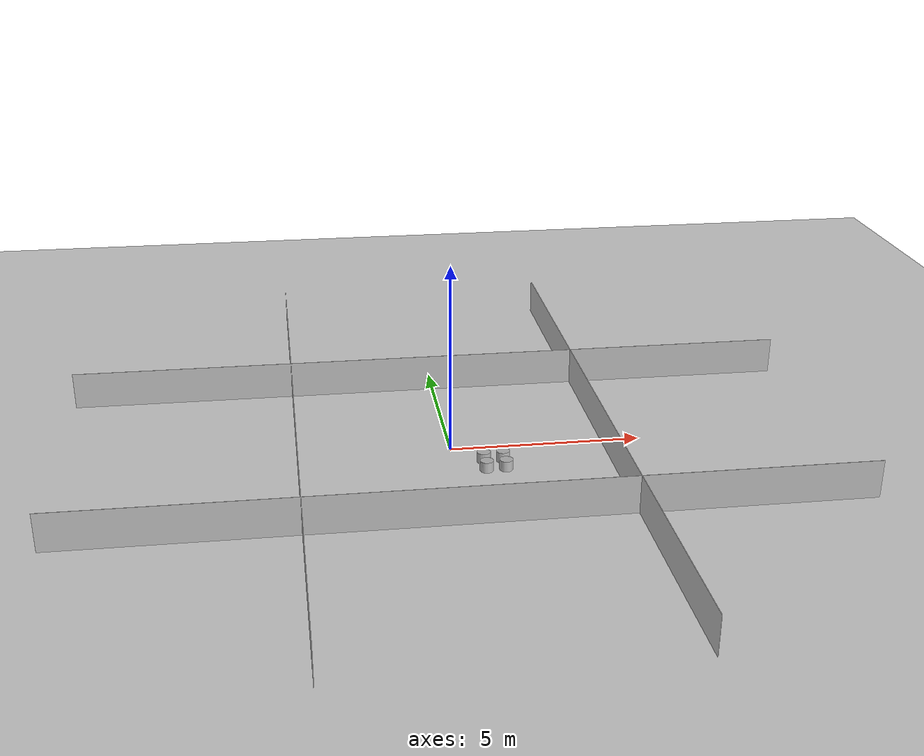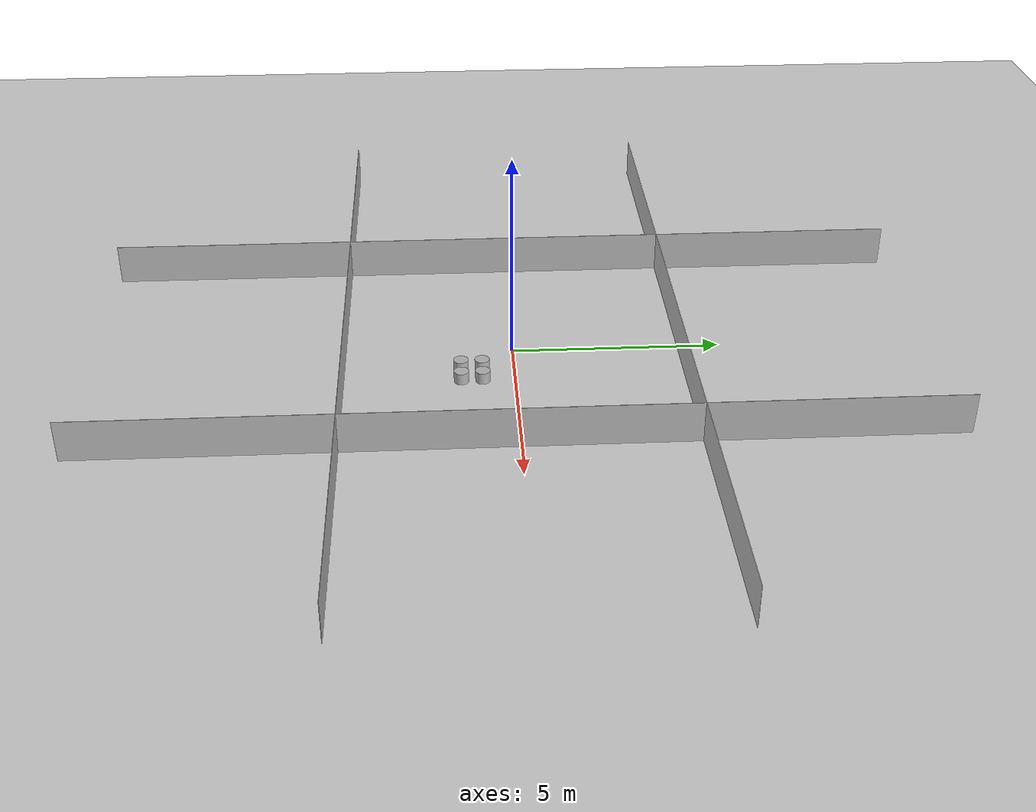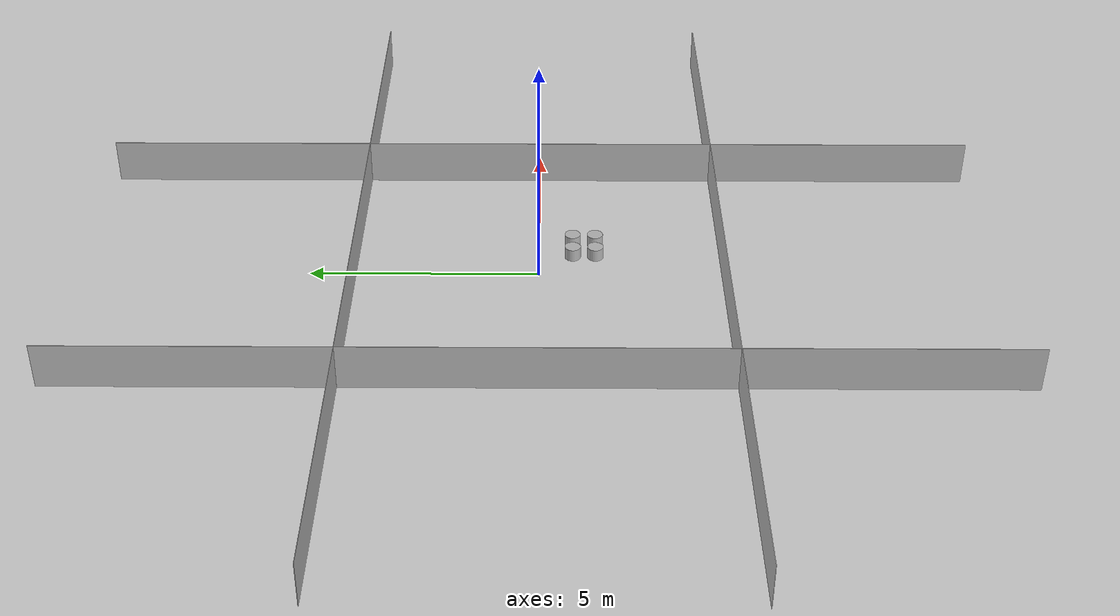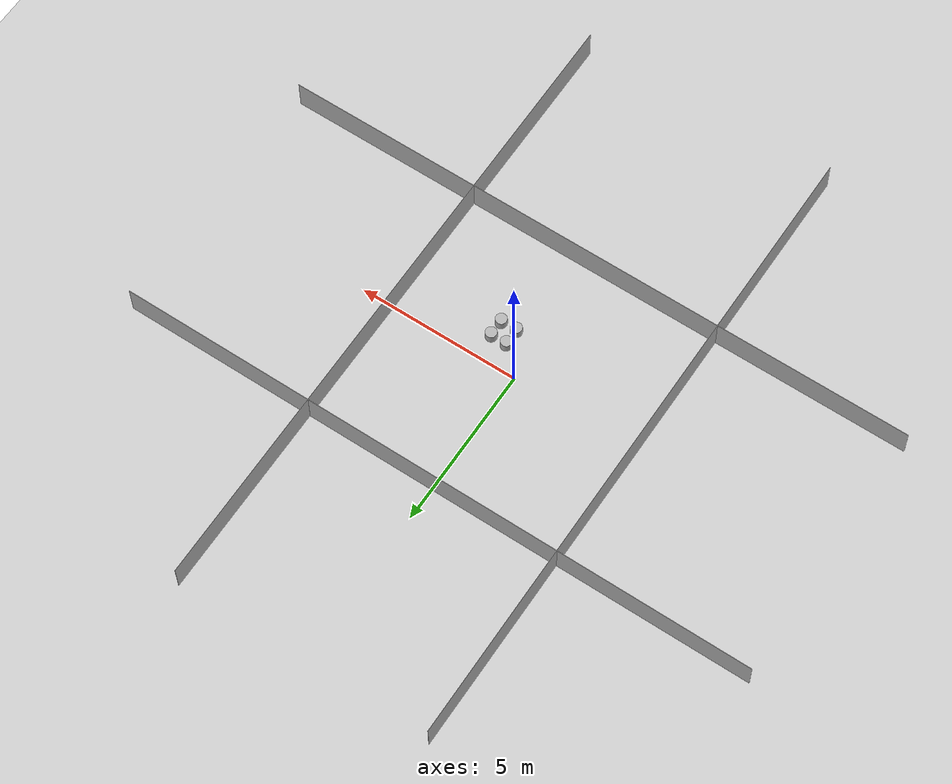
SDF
<sdf version='1.10'>
  <world name='default'>
    <physics type='ode'>
      <max_step_size>0.0040000000000000001</max_step_size>
      <real_time_factor>1</real_time_factor>
      <real_time_update_rate>250</real_time_update_rate>
    </physics>
    <plugin name='gz::sim::systems::Physics' filename='gz-sim-physics-system'/>
    <plugin name='gz::sim::systems::UserCommands' filename='gz-sim-user-commands-system'/>
    <plugin name='gz::sim::systems::SceneBroadcaster' filename='gz-sim-scene-broadcaster-system'/>
    <plugin name='gz::sim::systems::Contact' filename='gz-sim-contact-system'/>
    <plugin name='gz::sim::systems::Imu' filename='gz-sim-imu-system'/>
    <plugin name='gz::sim::systems::Magnetometer' filename='gz-sim-magnetometer-system'/>
    <plugin name='gz::sim::systems::Altimeter' filename='gz-sim-altimeter-system'/>
    <plugin name='gz::sim::systems::NavSat' filename='gz-sim-navsat-system'/>
    <plugin name='gz::sim::systems::Sensors' filename='gz-sim-sensors-system'>
      <render_engine>ogre2</render_engine>
    </plugin>
    <gui fullscreen='false'>
      <plugin name='3D View' filename='GzScene3D'>
        <gz-gui>
          <title>3D View</title>
          <property type='bool' key='showTitleBar'>0</property>
          <property type='string' key='state'>docked</property>
        </gz-gui>
        <engine>ogre2</engine>
        <scene>scene</scene>
        <ambient_light>0.5984631152222222 0.5984631152222222 0.5984631152222222</ambient_light>
        <background_color>0.8984631152222222 0.8984631152222222 0.8984631152222222</background_color>
        <camera_pose>-6 0 6 0 0.5 0</camera_pose>
      </plugin>
      <plugin name='World control' filename='WorldControl'>
        <gz-gui>
          <title>World control</title>
          <property type='bool' key='showTitleBar'>0</property>
          <property type='bool' key='resizable'>0</property>
          <property type='double' key='height'>72</property>
          <property type='double' key='width'>121</property>
          <property type='double' key='z'>1</property>
          <property type='string' key='state'>floating</property>
          <anchors target='3D View'>
            <line own='left' target='left'/>
            <line own='bottom' target='bottom'/>
          </anchors>
        </gz-gui>
        <play_pause>1</play_pause>
        <step>1</step>
        <start_paused>1</start_paused>
      </plugin>
      <plugin name='World stats' filename='WorldStats'>
        <gz-gui>
          <title>World stats</title>
          <property type='bool' key='showTitleBar'>0</property>
          <property type='bool' key='resizable'>0</property>
          <property type='double' key='height'>110</property>
          <property type='double' key='width'>290</property>
          <property type='double' key='z'>1</property>
          <property type='string' key='state'>floating</property>
          <anchors target='3D View'>
            <line own='right' target='right'/>
            <line own='bottom' target='bottom'/>
          </anchors>
        </gz-gui>
        <sim_time>1</sim_time>
        <real_time>1</real_time>
        <real_time_factor>1</real_time_factor>
        <iterations>1</iterations>
      </plugin>
    </gui>
    <gravity>0 0 -9.8000000000000007</gravity>
    <magnetic_field>6.0000000000000002e-06 2.3e-05 -4.1999999999999998e-05</magnetic_field>
    <atmosphere type='adiabatic'/>
    <spherical_coordinates>
      <surface_model>EARTH_WGS84</surface_model>
      <latitude_deg>39.79480109851339</latitude_deg>
      <longitude_deg>-84.08631702793322</longitude_deg>
      <elevation>265.2</elevation>
      <heading_deg>0</heading_deg>
    </spherical_coordinates>
    <scene>
      <grid>true</grid>
      <ambient>0.400000006 0.400000006 0.400000006 1</ambient>
      <background>0.699999988 0.699999988 0.699999988 1</background>
      <shadows>false</shadows>
    </scene>
    <model name='ground_plane'>
      <static>true</static>
      <link name='link'>
        <collision name='collision'>
          <geometry>
            <plane>
              <normal>0 0 1</normal>
              <size>1 1</size>
            </plane>
          </geometry>
          <surface>
            <friction>
              <ode/>
            </friction>
            <bounce/>
            <contact/>
          </surface>
        </collision>
        <visual name='visual'>
          <geometry>
            <plane>
              <normal>0 0 1</normal>
              <size>100 100</size>
            </plane>
          </geometry>
          <material>
            <ambient>0.800000012 0.800000012 0.800000012 1</ambient>
            <diffuse>0.800000012 0.800000012 0.800000012 1</diffuse>
            <specular>0.800000012 0.800000012 0.800000012 1</specular>
          </material>
        </visual>
        <pose>0 0 0 0 0 0</pose>
        <inertial>
          <pose>0 0 0 0 0 0</pose>
          <mass>1</mass>
          <inertia>
            <ixx>1</ixx>
            <ixy>0</ixy>
            <ixz>0</ixz>
            <iyy>1</iyy>
            <iyz>0</iyz>
            <izz>1</izz>
          </inertia>
        </inertial>
        <enable_wind>false</enable_wind>
      </link>
      <pose>0 0 0 0 0 0</pose>
      <self_collide>false</self_collide>
    </model>
    <model name='wall_1'>
      <pose>-4 0 .5 0 0 -1.57</pose>
      <static>true</static>
      <link name='link'>
        <collision name='collision'>
          <geometry>
            <box>
              <size>20 .01 1</size>
            </box>
          </geometry>
        </collision>
        <visual name='visual'>
          <geometry>
            <box>
              <size>20 .01 1</size>
            </box>
          </geometry>
          <material>
            <ambient>0.7 0.7 0.7 1</ambient>
            <diffuse>0.7 0.7 0.7 1</diffuse>
            <specular>0.7 0.7 0.7 1</specular>
          </material>
        </visual>
        <inertial>
          <pose>0 0 0 0 0 0</pose>
          <mass>1</mass>
          <inertia>
            <ixx>1</ixx>
            <ixy>0</ixy>
            <ixz>0</ixz>
            <iyy>1</iyy>
            <iyz>0</iyz>
            <izz>1</izz>
          </inertia>
        </inertial>
        <enable_wind>false</enable_wind>
      </link>
      <self_collide>false</self_collide>
    </model>
    <model name='wall_2'>
      <pose>4 0 .5 0 0 -1.57</pose>
      <static>true</static>
      <link name='link'>
        <collision name='collision'>
          <geometry>
            <box>
              <size>20 .01 1</size>
            </box>
          </geometry>
        </collision>
        <visual name='visual'>
          <geometry>
            <box>
              <size>20 .01 1</size>
            </box>
          </geometry>
          <material>
            <ambient>0.7 0.7 0.7 1</ambient>
            <diffuse>0.7 0.7 0.7 1</diffuse>
            <specular>0.7 0.7 0.7 1</specular>
          </material>
        </visual>
        <inertial>
          <pose>0 0 0 0 0 0</pose>
          <mass>1</mass>
          <inertia>
            <ixx>1</ixx>
            <ixy>0</ixy>
            <ixz>0</ixz>
            <iyy>1</iyy>
            <iyz>0</iyz>
            <izz>1</izz>
          </inertia>
        </inertial>
        <enable_wind>false</enable_wind>
      </link>
      <self_collide>false</self_collide>
    </model>
    <model name='wall_3'>
      <pose>0 4 .5 0 0 0</pose>
      <static>true</static>
      <link name='link'>
        <collision name='collision'>
          <geometry>
            <box>
              <size>20 .01 1</size>
            </box>
          </geometry>
        </collision>
        <visual name='visual'>
          <geometry>
            <box>
              <size>20 .01 1</size>
            </box>
          </geometry>
          <material>
            <ambient>0.7 0.7 0.7 1</ambient>
            <diffuse>0.7 0.7 0.7 1</diffuse>
            <specular>0.7 0.7 0.7 1</specular>
          </material>
        </visual>
        <inertial>
          <pose>0 0 0 0 0 0</pose>
          <mass>1</mass>
          <inertia>
            <ixx>1</ixx>
            <ixy>0</ixy>
            <ixz>0</ixz>
            <iyy>1</iyy>
            <iyz>0</iyz>
            <izz>1</izz>
          </inertia>
        </inertial>
        <enable_wind>false</enable_wind>
      </link>
      <self_collide>false</self_collide>
    </model>
    <model name='wall_4'>
      <pose>0 -4 .5 0 0 0</pose>
      <static>true</static>
      <link name='link'>
        <collision name='collision'>
          <geometry>
            <box>
              <size>20 .01 1</size>
            </box>
          </geometry>
        </collision>
        <visual name='visual'>
          <geometry>
            <box>
              <size>20 .01 1</size>
            </box>
          </geometry>
          <material>
            <ambient>0.7 0.7 0.7 1</ambient>
            <diffuse>0.7 0.7 0.7 1</diffuse>
            <specular>0.7 0.7 0.7 1</specular>
          </material>
        </visual>
        <inertial>
          <pose>0 0 0 0 0 0</pose>
          <mass>1</mass>
          <inertia>
            <ixx>1</ixx>
            <ixy>0</ixy>
            <ixz>0</ixz>
            <iyy>1</iyy>
            <iyz>0</iyz>
            <izz>1</izz>
          </inertia>
        </inertial>
        <enable_wind>false</enable_wind>
      </link>
      <self_collide>false</self_collide>
    </model>

    <model name='cylinder_1'>
      <pose>0.75 -0.75 0 0 0 0</pose>
      <static>true</static>
      <link name='link'>
        <collision name='collision'>
          <geometry>
            <cylinder>
              <length>0.5</length>
              <radius>.175</radius>
            </cylinder>
          </geometry>
        </collision>
        <visual name='visual'>
          <geometry>
            <cylinder>
              <length>0.5</length>
              <radius>.175</radius>
            </cylinder>
          </geometry>
          <material>
            <ambient>0.7 0.7 0.7 1</ambient>
            <diffuse>0.7 0.7 0.7 1</diffuse>
            <specular>0.7 0.7 0.7 1</specular>
          </material>
        </visual>
        <inertial>
          <pose>0 0 0 0 0 0</pose>
          <mass>1</mass>
          <inertia>
            <ixx>1</ixx>
            <ixy>0</ixy>
            <ixz>0</ixz>
            <iyy>1</iyy>
            <iyz>0</iyz>
            <izz>1</izz>
          </inertia>
        </inertial>
        <enable_wind>false</enable_wind>
      </link>
      <self_collide>false</self_collide>
    </model>
    <model name='cylinder_2'>
      <pose>0.75 -1.25 0 0 0 0</pose>
      <static>true</static>
      <link name='link'>
        <collision name='collision'>
          <geometry>
            <cylinder>
              <length>0.5</length>
              <radius>.175</radius>
            </cylinder>
          </geometry>
        </collision>
        <visual name='visual'>
          <geometry>
            <cylinder>
              <length>0.5</length>
              <radius>.175</radius>
            </cylinder>
          </geometry>
          <material>
            <ambient>0.7 0.7 0.7 1</ambient>
            <diffuse>0.7 0.7 0.7 1</diffuse>
            <specular>0.7 0.7 0.7 1</specular>
          </material>
        </visual>
        <inertial>
          <pose>0 0 0 0 0 0</pose>
          <mass>1</mass>
          <inertia>
            <ixx>1</ixx>
            <ixy>0</ixy>
            <ixz>0</ixz>
            <iyy>1</iyy>
            <iyz>0</iyz>
            <izz>1</izz>
          </inertia>
        </inertial>
        <enable_wind>false</enable_wind>
      </link>
      <self_collide>false</self_collide>
    </model>
    <model name='cylinder_3'>
      <pose>1.25 -0.75 0 0 0 0</pose>
      <static>true</static>
      <link name='link'>
        <collision name='collision'>
          <geometry>
            <cylinder>
              <length>0.5</length>
              <radius>.175</radius>
            </cylinder>
          </geometry>
        </collision>
        <visual name='visual'>
          <geometry>
            <cylinder>
              <length>0.5</length>
              <radius>.175</radius>
            </cylinder>
          </geometry>
          <material>
            <ambient>0.7 0.7 0.7 1</ambient>
            <diffuse>0.7 0.7 0.7 1</diffuse>
            <specular>0.7 0.7 0.7 1</specular>
          </material>
        </visual>
        <inertial>
          <pose>0 0 0 0 0 0</pose>
          <mass>1</mass>
          <inertia>
            <ixx>1</ixx>
            <ixy>0</ixy>
            <ixz>0</ixz>
            <iyy>1</iyy>
            <iyz>0</iyz>
            <izz>1</izz>
          </inertia>
        </inertial>
        <enable_wind>false</enable_wind>
      </link>
      <self_collide>false</self_collide>
    </model>
    <model name='cylinder_4'>
      <pose>1.25 -1.25 0 0 0 0</pose>
      <static>true</static>
      <link name='link'>
        <collision name='collision'>
          <geometry>
            <cylinder>
              <length>0.5</length>
              <radius>.175</radius>
            </cylinder>
          </geometry>
        </collision>
        <visual name='visual'>
          <geometry>
            <cylinder>
              <length>0.5</length>
              <radius>.175</radius>
            </cylinder>
          </geometry>
          <material>
            <ambient>0.7 0.7 0.7 1</ambient>
            <diffuse>0.7 0.7 0.7 1</diffuse>
            <specular>0.7 0.7 0.7 1</specular>
          </material>
        </visual>
        <inertial>
          <pose>0 0 0 0 0 0</pose>
          <mass>1</mass>
          <inertia>
            <ixx>1</ixx>
            <ixy>0</ixy>
            <ixz>0</ixz>
            <iyy>1</iyy>
            <iyz>0</iyz>
            <izz>1</izz>
          </inertia>
        </inertial>
        <enable_wind>false</enable_wind>
      </link>
      <self_collide>false</self_collide>
    </model>

    <light name='sunUTC' type='directional'>
      <pose>0 0 500 0 0 0</pose>
      <cast_shadows>false</cast_shadows>
      <intensity>1</intensity>
      <direction>0.001 0.625 -0.78000000000000003</direction>
      <diffuse>0.903999984 0.903999984 0.903999984 1</diffuse>
      <specular>0.270999998 0.270999998 0.270999998 1</specular>
      <attenuation>
        <range>2000</range>
        <linear>0</linear>
        <constant>1</constant>
        <quadratic>0</quadratic>
      </attenuation>
      <spot>
        <inner_angle>0</inner_angle>
        <outer_angle>0</outer_angle>
        <falloff>0</falloff>
      </spot>
    </light>
  </world>
</sdf>
